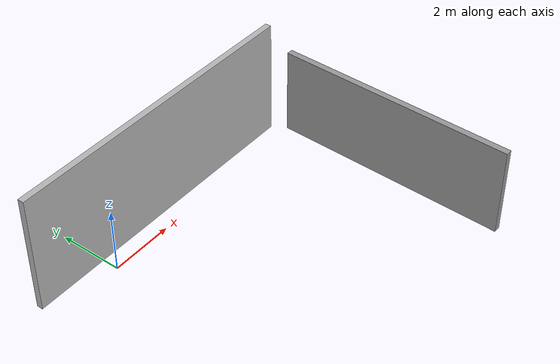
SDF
<sdf version="1.5">
 <world name="default">
  <model name="cutout_wall">
   <static>1</static>
   <link name="link">
    <pose>0 0 1.4 0 -0 0</pose>
    <collision name="collision">
     <geometry><box><size>10 0.2 3.8</size></box></geometry>
     <surface>
      <contact>
       <collide_without_contact>1</collide_without_contact>
       <collide_without_contact_bitmask>2</collide_without_contact_bitmask>
      </contact>
     </surface>
    </collision>
    <visual name="visual">
     <cast_shadows>0</cast_shadows>
     <geometry><box><size>10 0.2 3.8</size></box></geometry>
     <material>
      <script>
       <uri>model://cutout_wall/materials/scripts</uri>
       <uri>model://cutout_wall/materials/textures</uri>
       <name>drc_practice/cutout_wall</name>
      </script>
     </material>
    </visual>
    <sensor name="mud_contact" type="contact">
     <always_on>1</always_on>
     <update_rate>1000</update_rate>
     <contact><collision>collision</collision><topic>__default_topic__</topic></contact>
    </sensor>
   </link>
   <plugin name="gazebo_mud" filename="libMudPlugin.so">
    <contact_sensor_name>link/mud_contact</contact_sensor_name>
    <stiffness>0.0</stiffness>
    <damping>40.0</damping>
    <contact_surface_bitmask>2</contact_surface_bitmask>
    <link_name>drill::link</link_name>
   </plugin>
   <pose>3 1 0 0 -0 0</pose>
  </model>
  <model name="grey_wall_0">
   <static>1</static>
   <link name="link">
    <pose>0 0 1.4 0 -0 0</pose>
    <collision name="collision"><geometry><box><size>7.5 0.2 2.8</size></box></geometry></collision>
    <visual name="visual">
     <cast_shadows>0</cast_shadows>
     <geometry><box><size>7.5 0.2 2.8</size></box></geometry>
     <material>
      <script>
       <uri>model://grey_wall/materials/scripts</uri>
       <uri>model://grey_wall/materials/textures</uri>
       <name>vrc/grey_wall</name>
      </script>
     </material>
    </visual>
   </link>
   <pose>7.72507 -3.67061 0 0 0 -1.60417</pose>
  </model>
 </world>
</sdf>
